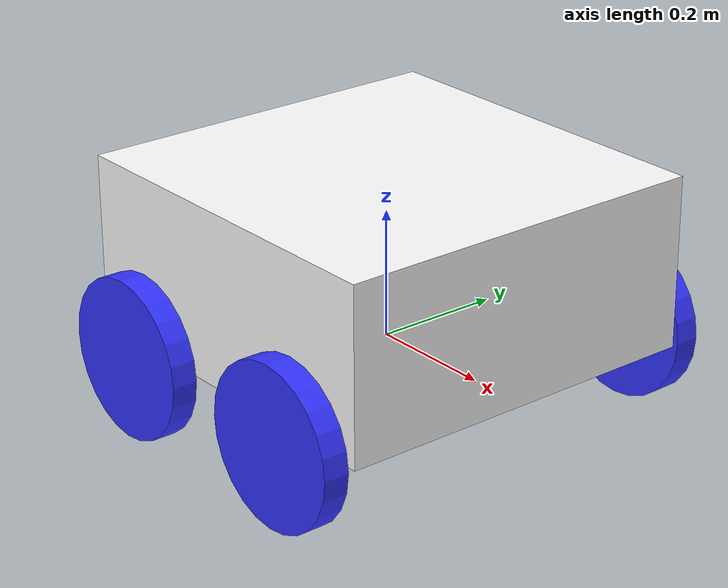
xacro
<?xml version="1.0"?>
<robot xmlns:xacro="http://www.ros.org/wiki/xacro" >

    <xacro:include filename="inertial_macros.xacro"/>

    <material name="white">
        <color rgba="1 1 1 1" />
    </material>

    <material name="orange">
        <color rgba="1 0.3 0.1 1"/>
    </material>

    <material name="blue">
        <color rgba="0.2 0.2 1 1"/>
    </material>

    <material name="black">
        <color rgba="0 0 0 1"/>
    </material>

    <material name="red">
        <color rgba="1 0 0 1"/>
    </material>
    <joint name="base_footprint_joint" type="fixed">
        <parent link="base_link"/>
        <child link="base_footprint"/>
        <origin xyz="0 0 0" rpy="0 0 0"/>
    </joint>

    <link name="base_footprint">
    </link>

    <!-- BASE LINK -->

    <link name="base_link">

    </link>

    <!-- CHASSIS LINK -->

    <joint name="chassis_joint" type="fixed">
        <parent link="base_link"/>
        <child link="chassis"/>
        <origin xyz="-0.3 0 0"/>
    </joint>

    <link name="chassis">
        <visual>
            <origin xyz="0.3 0 0.135"/>
            <geometry>
                <box size="0.6 0.6 0.27"/>
            </geometry>
            <material name="white"/>
        </visual>
        <collision>
            <origin xyz="0.3 0 0.135"/>
            <geometry>
                <box size="0.6 0.6 0.27"/>
            </geometry>
        </collision>
        <xacro:inertial_box mass="0.5" x="0.3" y="0.3" z="0.15">
            <origin xyz="0.3 0 0.135" rpy="0 0 0"/>
        </xacro:inertial_box>
    </link>

    <gazebo reference="chassis">
        <material>Gazebo/White</material>
    </gazebo>

    <!-- LEFT back WHEEL LINK -->

    <joint name="back_left_wheel_joint" type="continuous">
        <parent link="base_link"/>
        <child link="back_left_wheel"/>
        <origin xyz="-0.175 0.33 0" rpy="-${pi/2} 0 0" />
        <axis xyz="0 0 1"/>
    </joint>

    <link name="back_left_wheel">
        <visual>
            <geometry>
                <cylinder radius="0.125" length="0.04"/>
            </geometry>
            <material name="blue"/>
        </visual>
        <collision>
            <geometry>
                <sphere radius="0.125" />
            </geometry>
        </collision>
        <xacro:inertial_cylinder mass="0.1" length="0.04" radius="0.125">
            <origin xyz="0 0 0" rpy="0 0 0"/>
        </xacro:inertial_cylinder>
    </link>

    <gazebo reference="back_left_wheel">
        <material>Gazebo/Blue</material>
    </gazebo>

    <!-- LEFT front WHEEL LINK -->

    <joint name="front_left_wheel_joint" type="continuous">
        <parent link="base_link"/>
        <child link="front_left_wheel"/>
        <origin xyz="0.175 0.33 0" rpy="-${pi/2} 0 0" />
        <axis xyz="0 0 1"/>
    </joint>

    <link name="front_left_wheel">
        <visual>
            <geometry>
                <cylinder radius="0.125" length="0.04"/>
            </geometry>
            <material name="blue"/>
        </visual>
        <collision>
            <geometry>
                <sphere radius="0.125" />
            </geometry>
        </collision>
        <xacro:inertial_cylinder mass="0.1" length="0.04" radius="0.125">
            <origin xyz="0 0 0" rpy="0 0 0"/>
        </xacro:inertial_cylinder>
    </link>

    <gazebo reference="front_left_wheel">
        <material>Gazebo/Blue</material>
    </gazebo>

    <!-- RIGHT back WHEEL LINK -->

    <joint name="back_right_wheel_joint" type="continuous">
        <parent link="base_link"/>
        <child link="back_right_wheel"/>
        <origin xyz="-0.175 -0.33 0" rpy="${pi/2} 0 0" />
        <axis xyz="0 0 -1"/>
    </joint>

    <link name="back_right_wheel">
        <visual>
            <geometry>
                <cylinder radius="0.125" length="0.04"/>
            </geometry>
            <material name="blue"/>
        </visual>
        <collision>
            <geometry>
                <sphere radius="0.125" />
            </geometry>
        </collision>
        <xacro:inertial_cylinder mass="0.1" length="0.04" radius="0.125">
            <origin xyz="0 0 0" rpy="0 0 0"/>
        </xacro:inertial_cylinder>
    </link>

    <gazebo reference="back_right_wheel">
        <material>Gazebo/Blue</material>
    </gazebo>

    <!-- RIGHT front WHEEL LINK -->

    <joint name="front_right_wheel_joint" type="continuous">
        <parent link="base_link"/>
        <child link="front_right_wheel"/>
        <origin xyz="0.175 -0.33 0" rpy="${pi/2} 0 0" />
        <axis xyz="0 0 -1"/>
    </joint>

    <link name="front_right_wheel">
        <visual>
            <geometry>
                <cylinder radius="0.125" length="0.04"/>
            </geometry>
            <material name="blue"/>
        </visual>
        <collision>
            <geometry>
                <sphere radius="0.125" />
            </geometry>
        </collision>
        <xacro:inertial_cylinder mass="0.1" length="0.04" radius="0.125">
            <origin xyz="0 0 0" rpy="0 0 0"/>
        </xacro:inertial_cylinder>
    </link>

    <gazebo reference="front_right_wheel">
        <material>Gazebo/Blue</material>
    </gazebo>

</robot>
